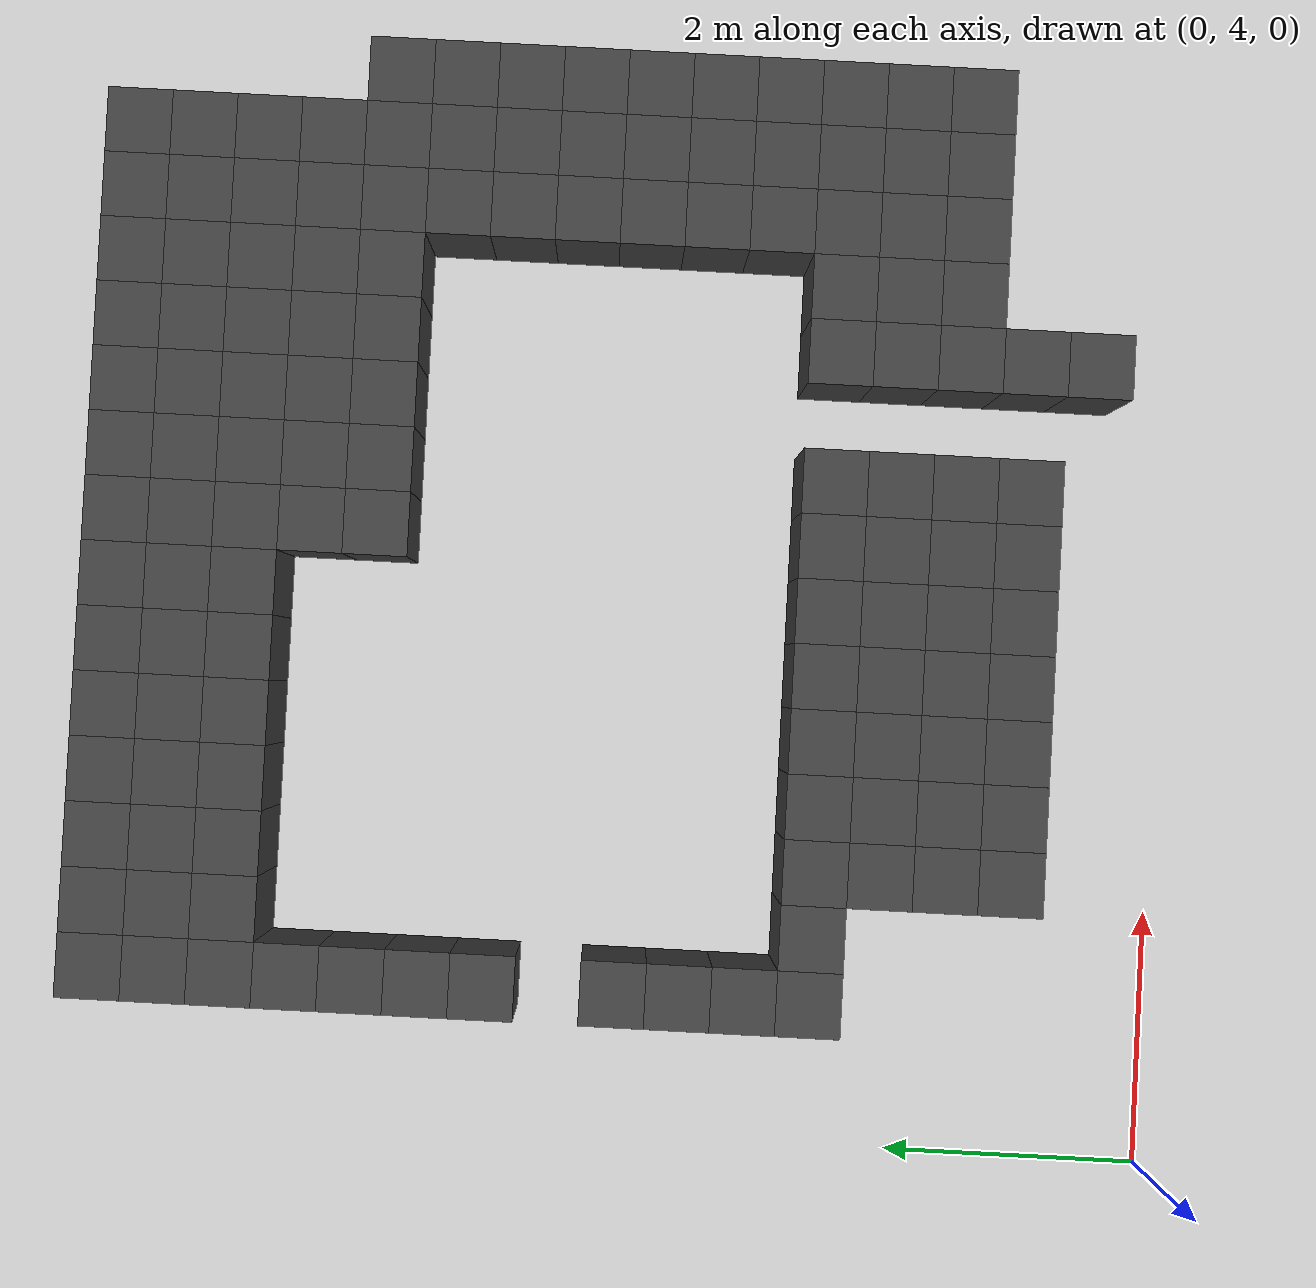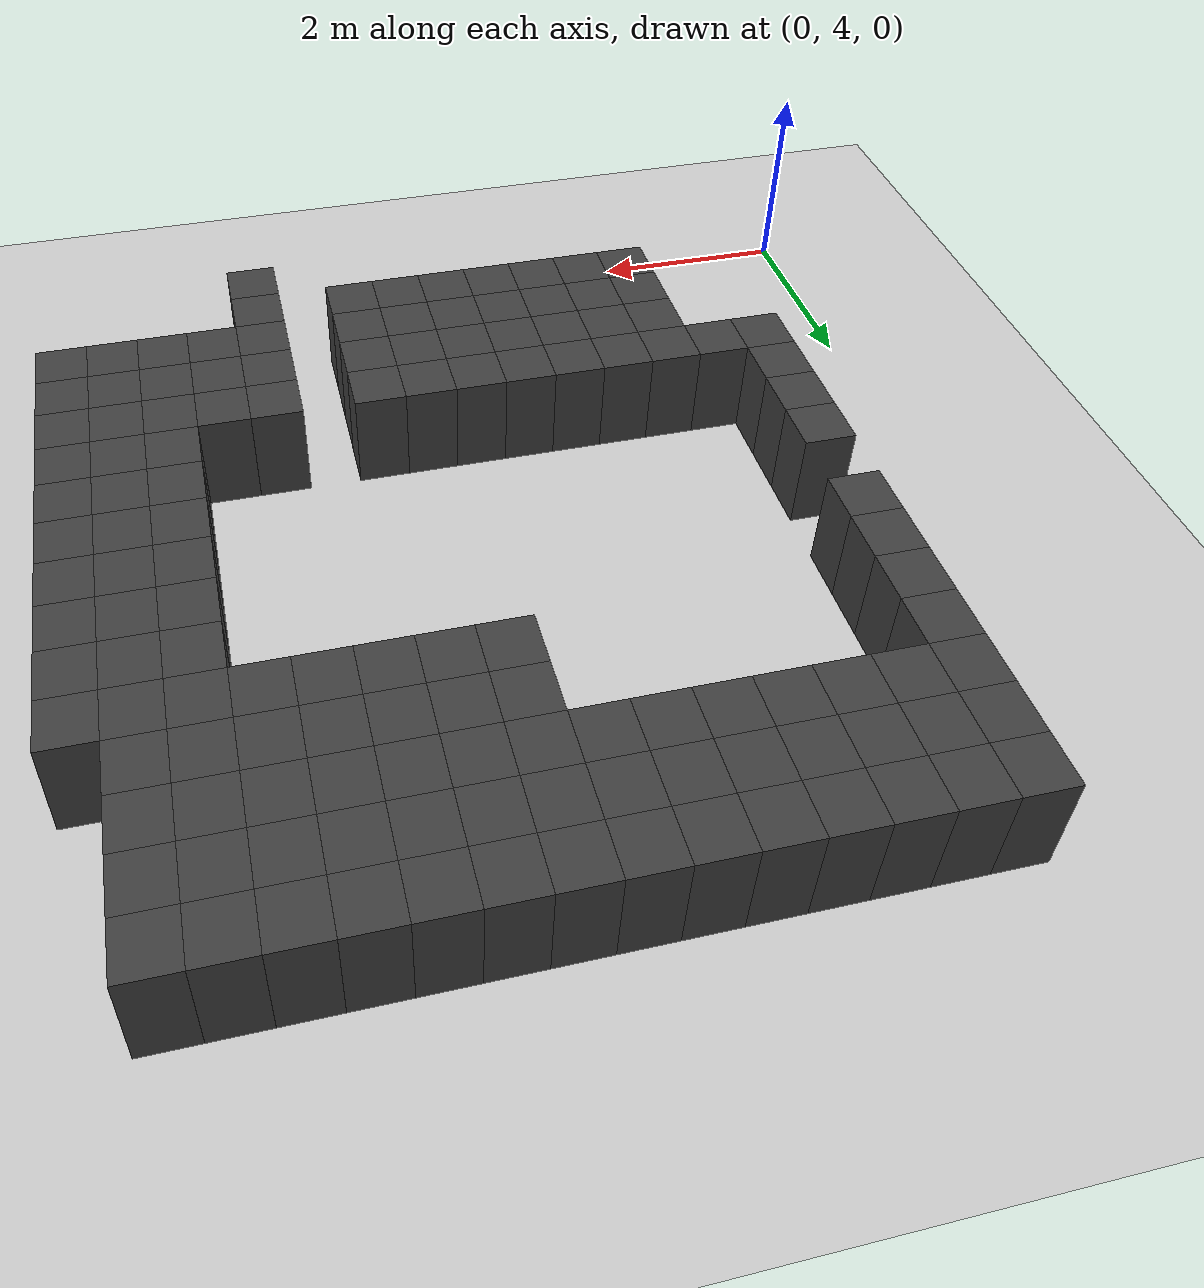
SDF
<sdf version="1.7">
 <world name="map_14980">
  <model name="ground_plane">
   <static>true</static>
   <link name="link">
    <collision name="collision">
     <geometry><plane><normal>0 0 1</normal><size>200 200</size></plane></geometry>
    </collision>
    <visual name="visual">
     <geometry><plane><normal>0 0 1</normal><size>200 200</size></plane></geometry>
     <material><ambient>0.8 0.8 0.8 1</ambient><diffuse>0.8 0.8 0.8 1</diffuse></material>
    </visual>
   </link>
  </model>
  <model name="maze_environment">
   <static>true</static>
   <link name="wall_27">
    <pose>1.250 12.250 0.500 0 0 0</pose>
    <collision name="col"><geometry><box><size>0.5 0.5 1.0</size></box></geometry></collision>
    <visual name="vis">
     <geometry><box><size>0.5 0.5 1.0</size></box></geometry>
     <material><ambient>0.15 0.15 0.15 1</ambient><diffuse>0.25 0.25 0.25 1</diffuse></material>
    </visual>
   </link>
   <link name="wall_28">
    <pose>1.750 12.250 0.500 0 0 0</pose>
    <collision name="col"><geometry><box><size>0.5 0.5 1.0</size></box></geometry></collision>
    <visual name="vis">
     <geometry><box><size>0.5 0.5 1.0</size></box></geometry>
     <material><ambient>0.15 0.15 0.15 1</ambient><diffuse>0.25 0.25 0.25 1</diffuse></material>
    </visual>
   </link>
   <link name="wall_29">
    <pose>2.250 12.250 0.500 0 0 0</pose>
    <collision name="col"><geometry><box><size>0.5 0.5 1.0</size></box></geometry></collision>
    <visual name="vis">
     <geometry><box><size>0.5 0.5 1.0</size></box></geometry>
     <material><ambient>0.15 0.15 0.15 1</ambient><diffuse>0.25 0.25 0.25 1</diffuse></material>
    </visual>
   </link>
   <link name="wall_30">
    <pose>2.750 12.250 0.500 0 0 0</pose>
    <collision name="col"><geometry><box><size>0.5 0.5 1.0</size></box></geometry></collision>
    <visual name="vis">
     <geometry><box><size>0.5 0.5 1.0</size></box></geometry>
     <material><ambient>0.15 0.15 0.15 1</ambient><diffuse>0.25 0.25 0.25 1</diffuse></material>
    </visual>
   </link>
   <link name="wall_31">
    <pose>3.250 12.250 0.500 0 0 0</pose>
    <collision name="col"><geometry><box><size>0.5 0.5 1.0</size></box></geometry></collision>
    <visual name="vis">
     <geometry><box><size>0.5 0.5 1.0</size></box></geometry>
     <material><ambient>0.15 0.15 0.15 1</ambient><diffuse>0.25 0.25 0.25 1</diffuse></material>
    </visual>
   </link>
   <link name="wall_32">
    <pose>3.750 12.250 0.500 0 0 0</pose>
    <collision name="col"><geometry><box><size>0.5 0.5 1.0</size></box></geometry></collision>
    <visual name="vis">
     <geometry><box><size>0.5 0.5 1.0</size></box></geometry>
     <material><ambient>0.15 0.15 0.15 1</ambient><diffuse>0.25 0.25 0.25 1</diffuse></material>
    </visual>
   </link>
   <link name="wall_33">
    <pose>4.250 12.250 0.500 0 0 0</pose>
    <collision name="col"><geometry><box><size>0.5 0.5 1.0</size></box></geometry></collision>
    <visual name="vis">
     <geometry><box><size>0.5 0.5 1.0</size></box></geometry>
     <material><ambient>0.15 0.15 0.15 1</ambient><diffuse>0.25 0.25 0.25 1</diffuse></material>
    </visual>
   </link>
   <link name="wall_34">
    <pose>4.750 12.250 0.500 0 0 0</pose>
    <collision name="col"><geometry><box><size>0.5 0.5 1.0</size></box></geometry></collision>
    <visual name="vis">
     <geometry><box><size>0.5 0.5 1.0</size></box></geometry>
     <material><ambient>0.15 0.15 0.15 1</ambient><diffuse>0.25 0.25 0.25 1</diffuse></material>
    </visual>
   </link>
   <link name="wall_35">
    <pose>5.250 12.250 0.500 0 0 0</pose>
    <collision name="col"><geometry><box><size>0.5 0.5 1.0</size></box></geometry></collision>
    <visual name="vis">
     <geometry><box><size>0.5 0.5 1.0</size></box></geometry>
     <material><ambient>0.15 0.15 0.15 1</ambient><diffuse>0.25 0.25 0.25 1</diffuse></material>
    </visual>
   </link>
   <link name="wall_36">
    <pose>5.750 12.250 0.500 0 0 0</pose>
    <collision name="col"><geometry><box><size>0.5 0.5 1.0</size></box></geometry></collision>
    <visual name="vis">
     <geometry><box><size>0.5 0.5 1.0</size></box></geometry>
     <material><ambient>0.15 0.15 0.15 1</ambient><diffuse>0.25 0.25 0.25 1</diffuse></material>
    </visual>
   </link>
   <link name="wall_37">
    <pose>6.250 12.250 0.500 0 0 0</pose>
    <collision name="col"><geometry><box><size>0.5 0.5 1.0</size></box></geometry></collision>
    <visual name="vis">
     <geometry><box><size>0.5 0.5 1.0</size></box></geometry>
     <material><ambient>0.15 0.15 0.15 1</ambient><diffuse>0.25 0.25 0.25 1</diffuse></material>
    </visual>
   </link>
   <link name="wall_38">
    <pose>6.750 12.250 0.500 0 0 0</pose>
    <collision name="col"><geometry><box><size>0.5 0.5 1.0</size></box></geometry></collision>
    <visual name="vis">
     <geometry><box><size>0.5 0.5 1.0</size></box></geometry>
     <material><ambient>0.15 0.15 0.15 1</ambient><diffuse>0.25 0.25 0.25 1</diffuse></material>
    </visual>
   </link>
   <link name="wall_39">
    <pose>7.250 12.250 0.500 0 0 0</pose>
    <collision name="col"><geometry><box><size>0.5 0.5 1.0</size></box></geometry></collision>
    <visual name="vis">
     <geometry><box><size>0.5 0.5 1.0</size></box></geometry>
     <material><ambient>0.15 0.15 0.15 1</ambient><diffuse>0.25 0.25 0.25 1</diffuse></material>
    </visual>
   </link>
   <link name="wall_40">
    <pose>7.750 12.250 0.500 0 0 0</pose>
    <collision name="col"><geometry><box><size>0.5 0.5 1.0</size></box></geometry></collision>
    <visual name="vis">
     <geometry><box><size>0.5 0.5 1.0</size></box></geometry>
     <material><ambient>0.15 0.15 0.15 1</ambient><diffuse>0.25 0.25 0.25 1</diffuse></material>
    </visual>
   </link>
   <link name="wall_74">
    <pose>1.250 11.750 0.500 0 0 0</pose>
    <collision name="col"><geometry><box><size>0.5 0.5 1.0</size></box></geometry></collision>
    <visual name="vis">
     <geometry><box><size>0.5 0.5 1.0</size></box></geometry>
     <material><ambient>0.15 0.15 0.15 1</ambient><diffuse>0.25 0.25 0.25 1</diffuse></material>
    </visual>
   </link>
   <link name="wall_75">
    <pose>1.750 11.750 0.500 0 0 0</pose>
    <collision name="col"><geometry><box><size>0.5 0.5 1.0</size></box></geometry></collision>
    <visual name="vis">
     <geometry><box><size>0.5 0.5 1.0</size></box></geometry>
     <material><ambient>0.15 0.15 0.15 1</ambient><diffuse>0.25 0.25 0.25 1</diffuse></material>
    </visual>
   </link>
   <link name="wall_76">
    <pose>2.250 11.750 0.500 0 0 0</pose>
    <collision name="col"><geometry><box><size>0.5 0.5 1.0</size></box></geometry></collision>
    <visual name="vis">
     <geometry><box><size>0.5 0.5 1.0</size></box></geometry>
     <material><ambient>0.15 0.15 0.15 1</ambient><diffuse>0.25 0.25 0.25 1</diffuse></material>
    </visual>
   </link>
   <link name="wall_77">
    <pose>2.750 11.750 0.500 0 0 0</pose>
    <collision name="col"><geometry><box><size>0.5 0.5 1.0</size></box></geometry></collision>
    <visual name="vis">
     <geometry><box><size>0.5 0.5 1.0</size></box></geometry>
     <material><ambient>0.15 0.15 0.15 1</ambient><diffuse>0.25 0.25 0.25 1</diffuse></material>
    </visual>
   </link>
   <link name="wall_78">
    <pose>3.250 11.750 0.500 0 0 0</pose>
    <collision name="col"><geometry><box><size>0.5 0.5 1.0</size></box></geometry></collision>
    <visual name="vis">
     <geometry><box><size>0.5 0.5 1.0</size></box></geometry>
     <material><ambient>0.15 0.15 0.15 1</ambient><diffuse>0.25 0.25 0.25 1</diffuse></material>
    </visual>
   </link>
   <link name="wall_79">
    <pose>3.750 11.750 0.500 0 0 0</pose>
    <collision name="col"><geometry><box><size>0.5 0.5 1.0</size></box></geometry></collision>
    <visual name="vis">
     <geometry><box><size>0.5 0.5 1.0</size></box></geometry>
     <material><ambient>0.15 0.15 0.15 1</ambient><diffuse>0.25 0.25 0.25 1</diffuse></material>
    </visual>
   </link>
   <link name="wall_80">
    <pose>4.250 11.750 0.500 0 0 0</pose>
    <collision name="col"><geometry><box><size>0.5 0.5 1.0</size></box></geometry></collision>
    <visual name="vis">
     <geometry><box><size>0.5 0.5 1.0</size></box></geometry>
     <material><ambient>0.15 0.15 0.15 1</ambient><diffuse>0.25 0.25 0.25 1</diffuse></material>
    </visual>
   </link>
   <link name="wall_81">
    <pose>4.750 11.750 0.500 0 0 0</pose>
    <collision name="col"><geometry><box><size>0.5 0.5 1.0</size></box></geometry></collision>
    <visual name="vis">
     <geometry><box><size>0.5 0.5 1.0</size></box></geometry>
     <material><ambient>0.15 0.15 0.15 1</ambient><diffuse>0.25 0.25 0.25 1</diffuse></material>
    </visual>
   </link>
   <link name="wall_82">
    <pose>5.250 11.750 0.500 0 0 0</pose>
    <collision name="col"><geometry><box><size>0.5 0.5 1.0</size></box></geometry></collision>
    <visual name="vis">
     <geometry><box><size>0.5 0.5 1.0</size></box></geometry>
     <material><ambient>0.15 0.15 0.15 1</ambient><diffuse>0.25 0.25 0.25 1</diffuse></material>
    </visual>
   </link>
   <link name="wall_83">
    <pose>5.750 11.750 0.500 0 0 0</pose>
    <collision name="col"><geometry><box><size>0.5 0.5 1.0</size></box></geometry></collision>
    <visual name="vis">
     <geometry><box><size>0.5 0.5 1.0</size></box></geometry>
     <material><ambient>0.15 0.15 0.15 1</ambient><diffuse>0.25 0.25 0.25 1</diffuse></material>
    </visual>
   </link>
   <link name="wall_84">
    <pose>6.250 11.750 0.500 0 0 0</pose>
    <collision name="col"><geometry><box><size>0.5 0.5 1.0</size></box></geometry></collision>
    <visual name="vis">
     <geometry><box><size>0.5 0.5 1.0</size></box></geometry>
     <material><ambient>0.15 0.15 0.15 1</ambient><diffuse>0.25 0.25 0.25 1</diffuse></material>
    </visual>
   </link>
   <link name="wall_85">
    <pose>6.750 11.750 0.500 0 0 0</pose>
    <collision name="col"><geometry><box><size>0.5 0.5 1.0</size></box></geometry></collision>
    <visual name="vis">
     <geometry><box><size>0.5 0.5 1.0</size></box></geometry>
     <material><ambient>0.15 0.15 0.15 1</ambient><diffuse>0.25 0.25 0.25 1</diffuse></material>
    </visual>
   </link>
   <link name="wall_86">
    <pose>7.250 11.750 0.500 0 0 0</pose>
    <collision name="col"><geometry><box><size>0.5 0.5 1.0</size></box></geometry></collision>
    <visual name="vis">
     <geometry><box><size>0.5 0.5 1.0</size></box></geometry>
     <material><ambient>0.15 0.15 0.15 1</ambient><diffuse>0.25 0.25 0.25 1</diffuse></material>
    </visual>
   </link>
   <link name="wall_87">
    <pose>7.750 11.750 0.500 0 0 0</pose>
    <collision name="col"><geometry><box><size>0.5 0.5 1.0</size></box></geometry></collision>
    <visual name="vis">
     <geometry><box><size>0.5 0.5 1.0</size></box></geometry>
     <material><ambient>0.15 0.15 0.15 1</ambient><diffuse>0.25 0.25 0.25 1</diffuse></material>
    </visual>
   </link>
   <link name="wall_121">
    <pose>1.250 11.250 0.500 0 0 0</pose>
    <collision name="col"><geometry><box><size>0.5 0.5 1.0</size></box></geometry></collision>
    <visual name="vis">
     <geometry><box><size>0.5 0.5 1.0</size></box></geometry>
     <material><ambient>0.15 0.15 0.15 1</ambient><diffuse>0.25 0.25 0.25 1</diffuse></material>
    </visual>
   </link>
   <link name="wall_122">
    <pose>1.750 11.250 0.500 0 0 0</pose>
    <collision name="col"><geometry><box><size>0.5 0.5 1.0</size></box></geometry></collision>
    <visual name="vis">
     <geometry><box><size>0.5 0.5 1.0</size></box></geometry>
     <material><ambient>0.15 0.15 0.15 1</ambient><diffuse>0.25 0.25 0.25 1</diffuse></material>
    </visual>
   </link>
   <link name="wall_123">
    <pose>2.250 11.250 0.500 0 0 0</pose>
    <collision name="col"><geometry><box><size>0.5 0.5 1.0</size></box></geometry></collision>
    <visual name="vis">
     <geometry><box><size>0.5 0.5 1.0</size></box></geometry>
     <material><ambient>0.15 0.15 0.15 1</ambient><diffuse>0.25 0.25 0.25 1</diffuse></material>
    </visual>
   </link>
   <link name="wall_124">
    <pose>2.750 11.250 0.500 0 0 0</pose>
    <collision name="col"><geometry><box><size>0.5 0.5 1.0</size></box></geometry></collision>
    <visual name="vis">
     <geometry><box><size>0.5 0.5 1.0</size></box></geometry>
     <material><ambient>0.15 0.15 0.15 1</ambient><diffuse>0.25 0.25 0.25 1</diffuse></material>
    </visual>
   </link>
   <link name="wall_125">
    <pose>3.250 11.250 0.500 0 0 0</pose>
    <collision name="col"><geometry><box><size>0.5 0.5 1.0</size></box></geometry></collision>
    <visual name="vis">
     <geometry><box><size>0.5 0.5 1.0</size></box></geometry>
     <material><ambient>0.15 0.15 0.15 1</ambient><diffuse>0.25 0.25 0.25 1</diffuse></material>
    </visual>
   </link>
   <link name="wall_126">
    <pose>3.750 11.250 0.500 0 0 0</pose>
    <collision name="col"><geometry><box><size>0.5 0.5 1.0</size></box></geometry></collision>
    <visual name="vis">
     <geometry><box><size>0.5 0.5 1.0</size></box></geometry>
     <material><ambient>0.15 0.15 0.15 1</ambient><diffuse>0.25 0.25 0.25 1</diffuse></material>
    </visual>
   </link>
   <link name="wall_127">
    <pose>4.250 11.250 0.500 0 0 0</pose>
    <collision name="col"><geometry><box><size>0.5 0.5 1.0</size></box></geometry></collision>
    <visual name="vis">
     <geometry><box><size>0.5 0.5 1.0</size></box></geometry>
     <material><ambient>0.15 0.15 0.15 1</ambient><diffuse>0.25 0.25 0.25 1</diffuse></material>
    </visual>
   </link>
   <link name="wall_128">
    <pose>4.750 11.250 0.500 0 0 0</pose>
    <collision name="col"><geometry><box><size>0.5 0.5 1.0</size></box></geometry></collision>
    <visual name="vis">
     <geometry><box><size>0.5 0.5 1.0</size></box></geometry>
     <material><ambient>0.15 0.15 0.15 1</ambient><diffuse>0.25 0.25 0.25 1</diffuse></material>
    </visual>
   </link>
   <link name="wall_129">
    <pose>5.250 11.250 0.500 0 0 0</pose>
    <collision name="col"><geometry><box><size>0.5 0.5 1.0</size></box></geometry></collision>
    <visual name="vis">
     <geometry><box><size>0.5 0.5 1.0</size></box></geometry>
     <material><ambient>0.15 0.15 0.15 1</ambient><diffuse>0.25 0.25 0.25 1</diffuse></material>
    </visual>
   </link>
   <link name="wall_130">
    <pose>5.750 11.250 0.500 0 0 0</pose>
    <collision name="col"><geometry><box><size>0.5 0.5 1.0</size></box></geometry></collision>
    <visual name="vis">
     <geometry><box><size>0.5 0.5 1.0</size></box></geometry>
     <material><ambient>0.15 0.15 0.15 1</ambient><diffuse>0.25 0.25 0.25 1</diffuse></material>
    </visual>
   </link>
   <link name="wall_131">
    <pose>6.250 11.250 0.500 0 0 0</pose>
    <collision name="col"><geometry><box><size>0.5 0.5 1.0</size></box></geometry></collision>
    <visual name="vis">
     <geometry><box><size>0.5 0.5 1.0</size></box></geometry>
     <material><ambient>0.15 0.15 0.15 1</ambient><diffuse>0.25 0.25 0.25 1</diffuse></material>
    </visual>
   </link>
   <link name="wall_132">
    <pose>6.750 11.250 0.500 0 0 0</pose>
    <collision name="col"><geometry><box><size>0.5 0.5 1.0</size></box></geometry></collision>
    <visual name="vis">
     <geometry><box><size>0.5 0.5 1.0</size></box></geometry>
     <material><ambient>0.15 0.15 0.15 1</ambient><diffuse>0.25 0.25 0.25 1</diffuse></material>
    </visual>
   </link>
   <link name="wall_133">
    <pose>7.250 11.250 0.500 0 0 0</pose>
    <collision name="col"><geometry><box><size>0.5 0.5 1.0</size></box></geometry></collision>
    <visual name="vis">
     <geometry><box><size>0.5 0.5 1.0</size></box></geometry>
     <material><ambient>0.15 0.15 0.15 1</ambient><diffuse>0.25 0.25 0.25 1</diffuse></material>
    </visual>
   </link>
   <link name="wall_134">
    <pose>7.750 11.250 0.500 0 0 0</pose>
    <collision name="col"><geometry><box><size>0.5 0.5 1.0</size></box></geometry></collision>
    <visual name="vis">
     <geometry><box><size>0.5 0.5 1.0</size></box></geometry>
     <material><ambient>0.15 0.15 0.15 1</ambient><diffuse>0.25 0.25 0.25 1</diffuse></material>
    </visual>
   </link>
   <link name="wall_168">
    <pose>1.250 10.750 0.500 0 0 0</pose>
    <collision name="col"><geometry><box><size>0.5 0.5 1.0</size></box></geometry></collision>
    <visual name="vis">
     <geometry><box><size>0.5 0.5 1.0</size></box></geometry>
     <material><ambient>0.15 0.15 0.15 1</ambient><diffuse>0.25 0.25 0.25 1</diffuse></material>
    </visual>
   </link>
   <link name="wall_169">
    <pose>4.750 10.750 0.500 0 0 0</pose>
    <collision name="col"><geometry><box><size>0.5 0.5 1.0</size></box></geometry></collision>
    <visual name="vis">
     <geometry><box><size>0.5 0.5 1.0</size></box></geometry>
     <material><ambient>0.15 0.15 0.15 1</ambient><diffuse>0.25 0.25 0.25 1</diffuse></material>
    </visual>
   </link>
   <link name="wall_170">
    <pose>5.250 10.750 0.500 0 0 0</pose>
    <collision name="col"><geometry><box><size>0.5 0.5 1.0</size></box></geometry></collision>
    <visual name="vis">
     <geometry><box><size>0.5 0.5 1.0</size></box></geometry>
     <material><ambient>0.15 0.15 0.15 1</ambient><diffuse>0.25 0.25 0.25 1</diffuse></material>
    </visual>
   </link>
   <link name="wall_171">
    <pose>5.750 10.750 0.500 0 0 0</pose>
    <collision name="col"><geometry><box><size>0.5 0.5 1.0</size></box></geometry></collision>
    <visual name="vis">
     <geometry><box><size>0.5 0.5 1.0</size></box></geometry>
     <material><ambient>0.15 0.15 0.15 1</ambient><diffuse>0.25 0.25 0.25 1</diffuse></material>
    </visual>
   </link>
   <link name="wall_172">
    <pose>6.250 10.750 0.500 0 0 0</pose>
    <collision name="col"><geometry><box><size>0.5 0.5 1.0</size></box></geometry></collision>
    <visual name="vis">
     <geometry><box><size>0.5 0.5 1.0</size></box></geometry>
     <material><ambient>0.15 0.15 0.15 1</ambient><diffuse>0.25 0.25 0.25 1</diffuse></material>
    </visual>
   </link>
   <link name="wall_173">
    <pose>6.750 10.750 0.500 0 0 0</pose>
    <collision name="col"><geometry><box><size>0.5 0.5 1.0</size></box></geometry></collision>
    <visual name="vis">
     <geometry><box><size>0.5 0.5 1.0</size></box></geometry>
     <material><ambient>0.15 0.15 0.15 1</ambient><diffuse>0.25 0.25 0.25 1</diffuse></material>
    </visual>
   </link>
   <link name="wall_174">
    <pose>7.250 10.750 0.500 0 0 0</pose>
    <collision name="col"><geometry><box><size>0.5 0.5 1.0</size></box></geometry></collision>
    <visual name="vis">
     <geometry><box><size>0.5 0.5 1.0</size></box></geometry>
     <material><ambient>0.15 0.15 0.15 1</ambient><diffuse>0.25 0.25 0.25 1</diffuse></material>
    </visual>
   </link>
   <link name="wall_175">
    <pose>7.750 10.750 0.500 0 0 0</pose>
    <collision name="col"><geometry><box><size>0.5 0.5 1.0</size></box></geometry></collision>
    <visual name="vis">
     <geometry><box><size>0.5 0.5 1.0</size></box></geometry>
     <material><ambient>0.15 0.15 0.15 1</ambient><diffuse>0.25 0.25 0.25 1</diffuse></material>
    </visual>
   </link>
   <link name="wall_211">
    <pose>1.250 10.250 0.500 0 0 0</pose>
    <collision name="col"><geometry><box><size>0.5 0.5 1.0</size></box></geometry></collision>
    <visual name="vis">
     <geometry><box><size>0.5 0.5 1.0</size></box></geometry>
     <material><ambient>0.15 0.15 0.15 1</ambient><diffuse>0.25 0.25 0.25 1</diffuse></material>
    </visual>
   </link>
   <link name="wall_212">
    <pose>4.750 10.250 0.500 0 0 0</pose>
    <collision name="col"><geometry><box><size>0.5 0.5 1.0</size></box></geometry></collision>
    <visual name="vis">
     <geometry><box><size>0.5 0.5 1.0</size></box></geometry>
     <material><ambient>0.15 0.15 0.15 1</ambient><diffuse>0.25 0.25 0.25 1</diffuse></material>
    </visual>
   </link>
   <link name="wall_213">
    <pose>5.250 10.250 0.500 0 0 0</pose>
    <collision name="col"><geometry><box><size>0.5 0.5 1.0</size></box></geometry></collision>
    <visual name="vis">
     <geometry><box><size>0.5 0.5 1.0</size></box></geometry>
     <material><ambient>0.15 0.15 0.15 1</ambient><diffuse>0.25 0.25 0.25 1</diffuse></material>
    </visual>
   </link>
   <link name="wall_214">
    <pose>5.750 10.250 0.500 0 0 0</pose>
    <collision name="col"><geometry><box><size>0.5 0.5 1.0</size></box></geometry></collision>
    <visual name="vis">
     <geometry><box><size>0.5 0.5 1.0</size></box></geometry>
     <material><ambient>0.15 0.15 0.15 1</ambient><diffuse>0.25 0.25 0.25 1</diffuse></material>
    </visual>
   </link>
   <link name="wall_215">
    <pose>6.250 10.250 0.500 0 0 0</pose>
    <collision name="col"><geometry><box><size>0.5 0.5 1.0</size></box></geometry></collision>
    <visual name="vis">
     <geometry><box><size>0.5 0.5 1.0</size></box></geometry>
     <material><ambient>0.15 0.15 0.15 1</ambient><diffuse>0.25 0.25 0.25 1</diffuse></material>
    </visual>
   </link>
   <link name="wall_216">
    <pose>6.750 10.250 0.500 0 0 0</pose>
    <collision name="col"><geometry><box><size>0.5 0.5 1.0</size></box></geometry></collision>
    <visual name="vis">
     <geometry><box><size>0.5 0.5 1.0</size></box></geometry>
     <material><ambient>0.15 0.15 0.15 1</ambient><diffuse>0.25 0.25 0.25 1</diffuse></material>
    </visual>
   </link>
   <link name="wall_217">
    <pose>7.250 10.250 0.500 0 0 0</pose>
    <collision name="col"><geometry><box><size>0.5 0.5 1.0</size></box></geometry></collision>
    <visual name="vis">
     <geometry><box><size>0.5 0.5 1.0</size></box></geometry>
     <material><ambient>0.15 0.15 0.15 1</ambient><diffuse>0.25 0.25 0.25 1</diffuse></material>
    </visual>
   </link>
   <link name="wall_218">
    <pose>7.750 10.250 0.500 0 0 0</pose>
    <collision name="col"><geometry><box><size>0.5 0.5 1.0</size></box></geometry></collision>
    <visual name="vis">
     <geometry><box><size>0.5 0.5 1.0</size></box></geometry>
     <material><ambient>0.15 0.15 0.15 1</ambient><diffuse>0.25 0.25 0.25 1</diffuse></material>
    </visual>
   </link>
   <link name="wall_219">
    <pose>8.250 10.250 0.500 0 0 0</pose>
    <collision name="col"><geometry><box><size>0.5 0.5 1.0</size></box></geometry></collision>
    <visual name="vis">
     <geometry><box><size>0.5 0.5 1.0</size></box></geometry>
     <material><ambient>0.15 0.15 0.15 1</ambient><diffuse>0.25 0.25 0.25 1</diffuse></material>
    </visual>
   </link>
   <link name="wall_254">
    <pose>1.250 9.750 0.500 0 0 0</pose>
    <collision name="col"><geometry><box><size>0.5 0.5 1.0</size></box></geometry></collision>
    <visual name="vis">
     <geometry><box><size>0.5 0.5 1.0</size></box></geometry>
     <material><ambient>0.15 0.15 0.15 1</ambient><diffuse>0.25 0.25 0.25 1</diffuse></material>
    </visual>
   </link>
   <link name="wall_255">
    <pose>7.250 9.750 0.500 0 0 0</pose>
    <collision name="col"><geometry><box><size>0.5 0.5 1.0</size></box></geometry></collision>
    <visual name="vis">
     <geometry><box><size>0.5 0.5 1.0</size></box></geometry>
     <material><ambient>0.15 0.15 0.15 1</ambient><diffuse>0.25 0.25 0.25 1</diffuse></material>
    </visual>
   </link>
   <link name="wall_256">
    <pose>7.750 9.750 0.500 0 0 0</pose>
    <collision name="col"><geometry><box><size>0.5 0.5 1.0</size></box></geometry></collision>
    <visual name="vis">
     <geometry><box><size>0.5 0.5 1.0</size></box></geometry>
     <material><ambient>0.15 0.15 0.15 1</ambient><diffuse>0.25 0.25 0.25 1</diffuse></material>
    </visual>
   </link>
   <link name="wall_257">
    <pose>8.250 9.750 0.500 0 0 0</pose>
    <collision name="col"><geometry><box><size>0.5 0.5 1.0</size></box></geometry></collision>
    <visual name="vis">
     <geometry><box><size>0.5 0.5 1.0</size></box></geometry>
     <material><ambient>0.15 0.15 0.15 1</ambient><diffuse>0.25 0.25 0.25 1</diffuse></material>
    </visual>
   </link>
   <link name="wall_292">
    <pose>1.250 9.250 0.500 0 0 0</pose>
    <collision name="col"><geometry><box><size>0.5 0.5 1.0</size></box></geometry></collision>
    <visual name="vis">
     <geometry><box><size>0.5 0.5 1.0</size></box></geometry>
     <material><ambient>0.15 0.15 0.15 1</ambient><diffuse>0.25 0.25 0.25 1</diffuse></material>
    </visual>
   </link>
   <link name="wall_293">
    <pose>7.250 9.250 0.500 0 0 0</pose>
    <collision name="col"><geometry><box><size>0.5 0.5 1.0</size></box></geometry></collision>
    <visual name="vis">
     <geometry><box><size>0.5 0.5 1.0</size></box></geometry>
     <material><ambient>0.15 0.15 0.15 1</ambient><diffuse>0.25 0.25 0.25 1</diffuse></material>
    </visual>
   </link>
   <link name="wall_294">
    <pose>7.750 9.250 0.500 0 0 0</pose>
    <collision name="col"><geometry><box><size>0.5 0.5 1.0</size></box></geometry></collision>
    <visual name="vis">
     <geometry><box><size>0.5 0.5 1.0</size></box></geometry>
     <material><ambient>0.15 0.15 0.15 1</ambient><diffuse>0.25 0.25 0.25 1</diffuse></material>
    </visual>
   </link>
   <link name="wall_295">
    <pose>8.250 9.250 0.500 0 0 0</pose>
    <collision name="col"><geometry><box><size>0.5 0.5 1.0</size></box></geometry></collision>
    <visual name="vis">
     <geometry><box><size>0.5 0.5 1.0</size></box></geometry>
     <material><ambient>0.15 0.15 0.15 1</ambient><diffuse>0.25 0.25 0.25 1</diffuse></material>
    </visual>
   </link>
   <link name="wall_328">
    <pose>7.250 8.750 0.500 0 0 0</pose>
    <collision name="col"><geometry><box><size>0.5 0.5 1.0</size></box></geometry></collision>
    <visual name="vis">
     <geometry><box><size>0.5 0.5 1.0</size></box></geometry>
     <material><ambient>0.15 0.15 0.15 1</ambient><diffuse>0.25 0.25 0.25 1</diffuse></material>
    </visual>
   </link>
   <link name="wall_329">
    <pose>7.750 8.750 0.500 0 0 0</pose>
    <collision name="col"><geometry><box><size>0.5 0.5 1.0</size></box></geometry></collision>
    <visual name="vis">
     <geometry><box><size>0.5 0.5 1.0</size></box></geometry>
     <material><ambient>0.15 0.15 0.15 1</ambient><diffuse>0.25 0.25 0.25 1</diffuse></material>
    </visual>
   </link>
   <link name="wall_330">
    <pose>8.250 8.750 0.500 0 0 0</pose>
    <collision name="col"><geometry><box><size>0.5 0.5 1.0</size></box></geometry></collision>
    <visual name="vis">
     <geometry><box><size>0.5 0.5 1.0</size></box></geometry>
     <material><ambient>0.15 0.15 0.15 1</ambient><diffuse>0.25 0.25 0.25 1</diffuse></material>
    </visual>
   </link>
   <link name="wall_356">
    <pose>1.250 8.250 0.500 0 0 0</pose>
    <collision name="col"><geometry><box><size>0.5 0.5 1.0</size></box></geometry></collision>
    <visual name="vis">
     <geometry><box><size>0.5 0.5 1.0</size></box></geometry>
     <material><ambient>0.15 0.15 0.15 1</ambient><diffuse>0.25 0.25 0.25 1</diffuse></material>
    </visual>
   </link>
   <link name="wall_357">
    <pose>7.250 8.250 0.500 0 0 0</pose>
    <collision name="col"><geometry><box><size>0.5 0.5 1.0</size></box></geometry></collision>
    <visual name="vis">
     <geometry><box><size>0.5 0.5 1.0</size></box></geometry>
     <material><ambient>0.15 0.15 0.15 1</ambient><diffuse>0.25 0.25 0.25 1</diffuse></material>
    </visual>
   </link>
   <link name="wall_358">
    <pose>7.750 8.250 0.500 0 0 0</pose>
    <collision name="col"><geometry><box><size>0.5 0.5 1.0</size></box></geometry></collision>
    <visual name="vis">
     <geometry><box><size>0.5 0.5 1.0</size></box></geometry>
     <material><ambient>0.15 0.15 0.15 1</ambient><diffuse>0.25 0.25 0.25 1</diffuse></material>
    </visual>
   </link>
   <link name="wall_359">
    <pose>8.250 8.250 0.500 0 0 0</pose>
    <collision name="col"><geometry><box><size>0.5 0.5 1.0</size></box></geometry></collision>
    <visual name="vis">
     <geometry><box><size>0.5 0.5 1.0</size></box></geometry>
     <material><ambient>0.15 0.15 0.15 1</ambient><diffuse>0.25 0.25 0.25 1</diffuse></material>
    </visual>
   </link>
   <link name="wall_385">
    <pose>1.250 7.750 0.500 0 0 0</pose>
    <collision name="col"><geometry><box><size>0.5 0.5 1.0</size></box></geometry></collision>
    <visual name="vis">
     <geometry><box><size>0.5 0.5 1.0</size></box></geometry>
     <material><ambient>0.15 0.15 0.15 1</ambient><diffuse>0.25 0.25 0.25 1</diffuse></material>
    </visual>
   </link>
   <link name="wall_386">
    <pose>7.250 7.750 0.500 0 0 0</pose>
    <collision name="col"><geometry><box><size>0.5 0.5 1.0</size></box></geometry></collision>
    <visual name="vis">
     <geometry><box><size>0.5 0.5 1.0</size></box></geometry>
     <material><ambient>0.15 0.15 0.15 1</ambient><diffuse>0.25 0.25 0.25 1</diffuse></material>
    </visual>
   </link>
   <link name="wall_387">
    <pose>7.750 7.750 0.500 0 0 0</pose>
    <collision name="col"><geometry><box><size>0.5 0.5 1.0</size></box></geometry></collision>
    <visual name="vis">
     <geometry><box><size>0.5 0.5 1.0</size></box></geometry>
     <material><ambient>0.15 0.15 0.15 1</ambient><diffuse>0.25 0.25 0.25 1</diffuse></material>
    </visual>
   </link>
   <link name="wall_388">
    <pose>8.250 7.750 0.500 0 0 0</pose>
    <collision name="col"><geometry><box><size>0.5 0.5 1.0</size></box></geometry></collision>
    <visual name="vis">
     <geometry><box><size>0.5 0.5 1.0</size></box></geometry>
     <material><ambient>0.15 0.15 0.15 1</ambient><diffuse>0.25 0.25 0.25 1</diffuse></material>
    </visual>
   </link>
   <link name="wall_408">
    <pose>1.250 7.250 0.500 0 0 0</pose>
    <collision name="col"><geometry><box><size>0.5 0.5 1.0</size></box></geometry></collision>
    <visual name="vis">
     <geometry><box><size>0.5 0.5 1.0</size></box></geometry>
     <material><ambient>0.15 0.15 0.15 1</ambient><diffuse>0.25 0.25 0.25 1</diffuse></material>
    </visual>
   </link>
   <link name="wall_409">
    <pose>7.250 7.250 0.500 0 0 0</pose>
    <collision name="col"><geometry><box><size>0.5 0.5 1.0</size></box></geometry></collision>
    <visual name="vis">
     <geometry><box><size>0.5 0.5 1.0</size></box></geometry>
     <material><ambient>0.15 0.15 0.15 1</ambient><diffuse>0.25 0.25 0.25 1</diffuse></material>
    </visual>
   </link>
   <link name="wall_410">
    <pose>7.750 7.250 0.500 0 0 0</pose>
    <collision name="col"><geometry><box><size>0.5 0.5 1.0</size></box></geometry></collision>
    <visual name="vis">
     <geometry><box><size>0.5 0.5 1.0</size></box></geometry>
     <material><ambient>0.15 0.15 0.15 1</ambient><diffuse>0.25 0.25 0.25 1</diffuse></material>
    </visual>
   </link>
   <link name="wall_411">
    <pose>8.250 7.250 0.500 0 0 0</pose>
    <collision name="col"><geometry><box><size>0.5 0.5 1.0</size></box></geometry></collision>
    <visual name="vis">
     <geometry><box><size>0.5 0.5 1.0</size></box></geometry>
     <material><ambient>0.15 0.15 0.15 1</ambient><diffuse>0.25 0.25 0.25 1</diffuse></material>
    </visual>
   </link>
   <link name="wall_438">
    <pose>1.250 6.750 0.500 0 0 0</pose>
    <collision name="col"><geometry><box><size>0.5 0.5 1.0</size></box></geometry></collision>
    <visual name="vis">
     <geometry><box><size>0.5 0.5 1.0</size></box></geometry>
     <material><ambient>0.15 0.15 0.15 1</ambient><diffuse>0.25 0.25 0.25 1</diffuse></material>
    </visual>
   </link>
   <link name="wall_439">
    <pose>1.750 6.750 0.500 0 0 0</pose>
    <collision name="col"><geometry><box><size>0.5 0.5 1.0</size></box></geometry></collision>
    <visual name="vis">
     <geometry><box><size>0.5 0.5 1.0</size></box></geometry>
     <material><ambient>0.15 0.15 0.15 1</ambient><diffuse>0.25 0.25 0.25 1</diffuse></material>
    </visual>
   </link>
   <link name="wall_440">
    <pose>2.250 6.750 0.500 0 0 0</pose>
    <collision name="col"><geometry><box><size>0.5 0.5 1.0</size></box></geometry></collision>
    <visual name="vis">
     <geometry><box><size>0.5 0.5 1.0</size></box></geometry>
     <material><ambient>0.15 0.15 0.15 1</ambient><diffuse>0.25 0.25 0.25 1</diffuse></material>
    </visual>
   </link>
   <link name="wall_441">
    <pose>2.750 6.750 0.500 0 0 0</pose>
    <collision name="col"><geometry><box><size>0.5 0.5 1.0</size></box></geometry></collision>
    <visual name="vis">
     <geometry><box><size>0.5 0.5 1.0</size></box></geometry>
     <material><ambient>0.15 0.15 0.15 1</ambient><diffuse>0.25 0.25 0.25 1</diffuse></material>
    </visual>
   </link>
   <link name="wall_442">
    <pose>3.250 6.750 0.500 0 0 0</pose>
    <collision name="col"><geometry><box><size>0.5 0.5 1.0</size></box></geometry></collision>
    <visual name="vis">
     <geometry><box><size>0.5 0.5 1.0</size></box></geometry>
     <material><ambient>0.15 0.15 0.15 1</ambient><diffuse>0.25 0.25 0.25 1</diffuse></material>
    </visual>
   </link>
   <link name="wall_443">
    <pose>3.750 6.750 0.500 0 0 0</pose>
    <collision name="col"><geometry><box><size>0.5 0.5 1.0</size></box></geometry></collision>
    <visual name="vis">
     <geometry><box><size>0.5 0.5 1.0</size></box></geometry>
     <material><ambient>0.15 0.15 0.15 1</ambient><diffuse>0.25 0.25 0.25 1</diffuse></material>
    </visual>
   </link>
   <link name="wall_444">
    <pose>4.250 6.750 0.500 0 0 0</pose>
    <collision name="col"><geometry><box><size>0.5 0.5 1.0</size></box></geometry></collision>
    <visual name="vis">
     <geometry><box><size>0.5 0.5 1.0</size></box></geometry>
     <material><ambient>0.15 0.15 0.15 1</ambient><diffuse>0.25 0.25 0.25 1</diffuse></material>
    </visual>
   </link>
   <link name="wall_445">
    <pose>4.750 6.750 0.500 0 0 0</pose>
    <collision name="col"><geometry><box><size>0.5 0.5 1.0</size></box></geometry></collision>
    <visual name="vis">
     <geometry><box><size>0.5 0.5 1.0</size></box></geometry>
     <material><ambient>0.15 0.15 0.15 1</ambient><diffuse>0.25 0.25 0.25 1</diffuse></material>
    </visual>
   </link>
   <link name="wall_446">
    <pose>5.250 6.750 0.500 0 0 0</pose>
    <collision name="col"><geometry><box><size>0.5 0.5 1.0</size></box></geometry></collision>
    <visual name="vis">
     <geometry><box><size>0.5 0.5 1.0</size></box></geometry>
     <material><ambient>0.15 0.15 0.15 1</ambient><diffuse>0.25 0.25 0.25 1</diffuse></material>
    </visual>
   </link>
   <link name="wall_447">
    <pose>6.250 6.750 0.500 0 0 0</pose>
    <collision name="col"><geometry><box><size>0.5 0.5 1.0</size></box></geometry></collision>
    <visual name="vis">
     <geometry><box><size>0.5 0.5 1.0</size></box></geometry>
     <material><ambient>0.15 0.15 0.15 1</ambient><diffuse>0.25 0.25 0.25 1</diffuse></material>
    </visual>
   </link>
   <link name="wall_448">
    <pose>6.750 6.750 0.500 0 0 0</pose>
    <collision name="col"><geometry><box><size>0.5 0.5 1.0</size></box></geometry></collision>
    <visual name="vis">
     <geometry><box><size>0.5 0.5 1.0</size></box></geometry>
     <material><ambient>0.15 0.15 0.15 1</ambient><diffuse>0.25 0.25 0.25 1</diffuse></material>
    </visual>
   </link>
   <link name="wall_449">
    <pose>7.250 6.750 0.500 0 0 0</pose>
    <collision name="col"><geometry><box><size>0.5 0.5 1.0</size></box></geometry></collision>
    <visual name="vis">
     <geometry><box><size>0.5 0.5 1.0</size></box></geometry>
     <material><ambient>0.15 0.15 0.15 1</ambient><diffuse>0.25 0.25 0.25 1</diffuse></material>
    </visual>
   </link>
   <link name="wall_450">
    <pose>7.750 6.750 0.500 0 0 0</pose>
    <collision name="col"><geometry><box><size>0.5 0.5 1.0</size></box></geometry></collision>
    <visual name="vis">
     <geometry><box><size>0.5 0.5 1.0</size></box></geometry>
     <material><ambient>0.15 0.15 0.15 1</ambient><diffuse>0.25 0.25 0.25 1</diffuse></material>
    </visual>
   </link>
   <link name="wall_451">
    <pose>8.250 6.750 0.500 0 0 0</pose>
    <collision name="col"><geometry><box><size>0.5 0.5 1.0</size></box></geometry></collision>
    <visual name="vis">
     <geometry><box><size>0.5 0.5 1.0</size></box></geometry>
     <material><ambient>0.15 0.15 0.15 1</ambient><diffuse>0.25 0.25 0.25 1</diffuse></material>
    </visual>
   </link>
   <link name="wall_477">
    <pose>2.250 6.250 0.500 0 0 0</pose>
    <collision name="col"><geometry><box><size>0.5 0.5 1.0</size></box></geometry></collision>
    <visual name="vis">
     <geometry><box><size>0.5 0.5 1.0</size></box></geometry>
     <material><ambient>0.15 0.15 0.15 1</ambient><diffuse>0.25 0.25 0.25 1</diffuse></material>
    </visual>
   </link>
   <link name="wall_478">
    <pose>2.750 6.250 0.500 0 0 0</pose>
    <collision name="col"><geometry><box><size>0.5 0.5 1.0</size></box></geometry></collision>
    <visual name="vis">
     <geometry><box><size>0.5 0.5 1.0</size></box></geometry>
     <material><ambient>0.15 0.15 0.15 1</ambient><diffuse>0.25 0.25 0.25 1</diffuse></material>
    </visual>
   </link>
   <link name="wall_479">
    <pose>3.250 6.250 0.500 0 0 0</pose>
    <collision name="col"><geometry><box><size>0.5 0.5 1.0</size></box></geometry></collision>
    <visual name="vis">
     <geometry><box><size>0.5 0.5 1.0</size></box></geometry>
     <material><ambient>0.15 0.15 0.15 1</ambient><diffuse>0.25 0.25 0.25 1</diffuse></material>
    </visual>
   </link>
   <link name="wall_480">
    <pose>3.750 6.250 0.500 0 0 0</pose>
    <collision name="col"><geometry><box><size>0.5 0.5 1.0</size></box></geometry></collision>
    <visual name="vis">
     <geometry><box><size>0.5 0.5 1.0</size></box></geometry>
     <material><ambient>0.15 0.15 0.15 1</ambient><diffuse>0.25 0.25 0.25 1</diffuse></material>
    </visual>
   </link>
   <link name="wall_481">
    <pose>4.250 6.250 0.500 0 0 0</pose>
    <collision name="col"><geometry><box><size>0.5 0.5 1.0</size></box></geometry></collision>
    <visual name="vis">
     <geometry><box><size>0.5 0.5 1.0</size></box></geometry>
     <material><ambient>0.15 0.15 0.15 1</ambient><diffuse>0.25 0.25 0.25 1</diffuse></material>
    </visual>
   </link>
   <link name="wall_482">
    <pose>4.750 6.250 0.500 0 0 0</pose>
    <collision name="col"><geometry><box><size>0.5 0.5 1.0</size></box></geometry></collision>
    <visual name="vis">
     <geometry><box><size>0.5 0.5 1.0</size></box></geometry>
     <material><ambient>0.15 0.15 0.15 1</ambient><diffuse>0.25 0.25 0.25 1</diffuse></material>
    </visual>
   </link>
   <link name="wall_483">
    <pose>5.250 6.250 0.500 0 0 0</pose>
    <collision name="col"><geometry><box><size>0.5 0.5 1.0</size></box></geometry></collision>
    <visual name="vis">
     <geometry><box><size>0.5 0.5 1.0</size></box></geometry>
     <material><ambient>0.15 0.15 0.15 1</ambient><diffuse>0.25 0.25 0.25 1</diffuse></material>
    </visual>
   </link>
   <link name="wall_484">
    <pose>6.250 6.250 0.500 0 0 0</pose>
    <collision name="col"><geometry><box><size>0.5 0.5 1.0</size></box></geometry></collision>
    <visual name="vis">
     <geometry><box><size>0.5 0.5 1.0</size></box></geometry>
     <material><ambient>0.15 0.15 0.15 1</ambient><diffuse>0.25 0.25 0.25 1</diffuse></material>
    </visual>
   </link>
   <link name="wall_485">
    <pose>6.750 6.250 0.500 0 0 0</pose>
    <collision name="col"><geometry><box><size>0.5 0.5 1.0</size></box></geometry></collision>
    <visual name="vis">
     <geometry><box><size>0.5 0.5 1.0</size></box></geometry>
     <material><ambient>0.15 0.15 0.15 1</ambient><diffuse>0.25 0.25 0.25 1</diffuse></material>
    </visual>
   </link>
   <link name="wall_486">
    <pose>7.250 6.250 0.500 0 0 0</pose>
    <collision name="col"><geometry><box><size>0.5 0.5 1.0</size></box></geometry></collision>
    <visual name="vis">
     <geometry><box><size>0.5 0.5 1.0</size></box></geometry>
     <material><ambient>0.15 0.15 0.15 1</ambient><diffuse>0.25 0.25 0.25 1</diffuse></material>
    </visual>
   </link>
   <link name="wall_487">
    <pose>7.750 6.250 0.500 0 0 0</pose>
    <collision name="col"><geometry><box><size>0.5 0.5 1.0</size></box></geometry></collision>
    <visual name="vis">
     <geometry><box><size>0.5 0.5 1.0</size></box></geometry>
     <material><ambient>0.15 0.15 0.15 1</ambient><diffuse>0.25 0.25 0.25 1</diffuse></material>
    </visual>
   </link>
   <link name="wall_488">
    <pose>8.250 6.250 0.500 0 0 0</pose>
    <collision name="col"><geometry><box><size>0.5 0.5 1.0</size></box></geometry></collision>
    <visual name="vis">
     <geometry><box><size>0.5 0.5 1.0</size></box></geometry>
     <material><ambient>0.15 0.15 0.15 1</ambient><diffuse>0.25 0.25 0.25 1</diffuse></material>
    </visual>
   </link>
   <link name="wall_510">
    <pose>2.250 5.750 0.500 0 0 0</pose>
    <collision name="col"><geometry><box><size>0.5 0.5 1.0</size></box></geometry></collision>
    <visual name="vis">
     <geometry><box><size>0.5 0.5 1.0</size></box></geometry>
     <material><ambient>0.15 0.15 0.15 1</ambient><diffuse>0.25 0.25 0.25 1</diffuse></material>
    </visual>
   </link>
   <link name="wall_511">
    <pose>2.750 5.750 0.500 0 0 0</pose>
    <collision name="col"><geometry><box><size>0.5 0.5 1.0</size></box></geometry></collision>
    <visual name="vis">
     <geometry><box><size>0.5 0.5 1.0</size></box></geometry>
     <material><ambient>0.15 0.15 0.15 1</ambient><diffuse>0.25 0.25 0.25 1</diffuse></material>
    </visual>
   </link>
   <link name="wall_512">
    <pose>3.250 5.750 0.500 0 0 0</pose>
    <collision name="col"><geometry><box><size>0.5 0.5 1.0</size></box></geometry></collision>
    <visual name="vis">
     <geometry><box><size>0.5 0.5 1.0</size></box></geometry>
     <material><ambient>0.15 0.15 0.15 1</ambient><diffuse>0.25 0.25 0.25 1</diffuse></material>
    </visual>
   </link>
   <link name="wall_513">
    <pose>3.750 5.750 0.500 0 0 0</pose>
    <collision name="col"><geometry><box><size>0.5 0.5 1.0</size></box></geometry></collision>
    <visual name="vis">
     <geometry><box><size>0.5 0.5 1.0</size></box></geometry>
     <material><ambient>0.15 0.15 0.15 1</ambient><diffuse>0.25 0.25 0.25 1</diffuse></material>
    </visual>
   </link>
   <link name="wall_514">
    <pose>4.250 5.750 0.500 0 0 0</pose>
    <collision name="col"><geometry><box><size>0.5 0.5 1.0</size></box></geometry></collision>
    <visual name="vis">
     <geometry><box><size>0.5 0.5 1.0</size></box></geometry>
     <material><ambient>0.15 0.15 0.15 1</ambient><diffuse>0.25 0.25 0.25 1</diffuse></material>
    </visual>
   </link>
   <link name="wall_515">
    <pose>4.750 5.750 0.500 0 0 0</pose>
    <collision name="col"><geometry><box><size>0.5 0.5 1.0</size></box></geometry></collision>
    <visual name="vis">
     <geometry><box><size>0.5 0.5 1.0</size></box></geometry>
     <material><ambient>0.15 0.15 0.15 1</ambient><diffuse>0.25 0.25 0.25 1</diffuse></material>
    </visual>
   </link>
   <link name="wall_516">
    <pose>5.250 5.750 0.500 0 0 0</pose>
    <collision name="col"><geometry><box><size>0.5 0.5 1.0</size></box></geometry></collision>
    <visual name="vis">
     <geometry><box><size>0.5 0.5 1.0</size></box></geometry>
     <material><ambient>0.15 0.15 0.15 1</ambient><diffuse>0.25 0.25 0.25 1</diffuse></material>
    </visual>
   </link>
   <link name="wall_517">
    <pose>6.250 5.750 0.500 0 0 0</pose>
    <collision name="col"><geometry><box><size>0.5 0.5 1.0</size></box></geometry></collision>
    <visual name="vis">
     <geometry><box><size>0.5 0.5 1.0</size></box></geometry>
     <material><ambient>0.15 0.15 0.15 1</ambient><diffuse>0.25 0.25 0.25 1</diffuse></material>
    </visual>
   </link>
   <link name="wall_518">
    <pose>6.750 5.750 0.500 0 0 0</pose>
    <collision name="col"><geometry><box><size>0.5 0.5 1.0</size></box></geometry></collision>
    <visual name="vis">
     <geometry><box><size>0.5 0.5 1.0</size></box></geometry>
     <material><ambient>0.15 0.15 0.15 1</ambient><diffuse>0.25 0.25 0.25 1</diffuse></material>
    </visual>
   </link>
   <link name="wall_519">
    <pose>7.250 5.750 0.500 0 0 0</pose>
    <collision name="col"><geometry><box><size>0.5 0.5 1.0</size></box></geometry></collision>
    <visual name="vis">
     <geometry><box><size>0.5 0.5 1.0</size></box></geometry>
     <material><ambient>0.15 0.15 0.15 1</ambient><diffuse>0.25 0.25 0.25 1</diffuse></material>
    </visual>
   </link>
   <link name="wall_520">
    <pose>7.750 5.750 0.500 0 0 0</pose>
    <collision name="col"><geometry><box><size>0.5 0.5 1.0</size></box></geometry></collision>
    <visual name="vis">
     <geometry><box><size>0.5 0.5 1.0</size></box></geometry>
     <material><ambient>0.15 0.15 0.15 1</ambient><diffuse>0.25 0.25 0.25 1</diffuse></material>
    </visual>
   </link>
   <link name="wall_521">
    <pose>8.250 5.750 0.500 0 0 0</pose>
    <collision name="col"><geometry><box><size>0.5 0.5 1.0</size></box></geometry></collision>
    <visual name="vis">
     <geometry><box><size>0.5 0.5 1.0</size></box></geometry>
     <material><ambient>0.15 0.15 0.15 1</ambient><diffuse>0.25 0.25 0.25 1</diffuse></material>
    </visual>
   </link>
   <link name="wall_543">
    <pose>2.250 5.250 0.500 0 0 0</pose>
    <collision name="col"><geometry><box><size>0.5 0.5 1.0</size></box></geometry></collision>
    <visual name="vis">
     <geometry><box><size>0.5 0.5 1.0</size></box></geometry>
     <material><ambient>0.15 0.15 0.15 1</ambient><diffuse>0.25 0.25 0.25 1</diffuse></material>
    </visual>
   </link>
   <link name="wall_544">
    <pose>2.750 5.250 0.500 0 0 0</pose>
    <collision name="col"><geometry><box><size>0.5 0.5 1.0</size></box></geometry></collision>
    <visual name="vis">
     <geometry><box><size>0.5 0.5 1.0</size></box></geometry>
     <material><ambient>0.15 0.15 0.15 1</ambient><diffuse>0.25 0.25 0.25 1</diffuse></material>
    </visual>
   </link>
   <link name="wall_545">
    <pose>3.250 5.250 0.500 0 0 0</pose>
    <collision name="col"><geometry><box><size>0.5 0.5 1.0</size></box></geometry></collision>
    <visual name="vis">
     <geometry><box><size>0.5 0.5 1.0</size></box></geometry>
     <material><ambient>0.15 0.15 0.15 1</ambient><diffuse>0.25 0.25 0.25 1</diffuse></material>
    </visual>
   </link>
   <link name="wall_546">
    <pose>3.750 5.250 0.500 0 0 0</pose>
    <collision name="col"><geometry><box><size>0.5 0.5 1.0</size></box></geometry></collision>
    <visual name="vis">
     <geometry><box><size>0.5 0.5 1.0</size></box></geometry>
     <material><ambient>0.15 0.15 0.15 1</ambient><diffuse>0.25 0.25 0.25 1</diffuse></material>
    </visual>
   </link>
   <link name="wall_547">
    <pose>4.250 5.250 0.500 0 0 0</pose>
    <collision name="col"><geometry><box><size>0.5 0.5 1.0</size></box></geometry></collision>
    <visual name="vis">
     <geometry><box><size>0.5 0.5 1.0</size></box></geometry>
     <material><ambient>0.15 0.15 0.15 1</ambient><diffuse>0.25 0.25 0.25 1</diffuse></material>
    </visual>
   </link>
   <link name="wall_548">
    <pose>4.750 5.250 0.500 0 0 0</pose>
    <collision name="col"><geometry><box><size>0.5 0.5 1.0</size></box></geometry></collision>
    <visual name="vis">
     <geometry><box><size>0.5 0.5 1.0</size></box></geometry>
     <material><ambient>0.15 0.15 0.15 1</ambient><diffuse>0.25 0.25 0.25 1</diffuse></material>
    </visual>
   </link>
   <link name="wall_549">
    <pose>5.250 5.250 0.500 0 0 0</pose>
    <collision name="col"><geometry><box><size>0.5 0.5 1.0</size></box></geometry></collision>
    <visual name="vis">
     <geometry><box><size>0.5 0.5 1.0</size></box></geometry>
     <material><ambient>0.15 0.15 0.15 1</ambient><diffuse>0.25 0.25 0.25 1</diffuse></material>
    </visual>
   </link>
   <link name="wall_550">
    <pose>6.250 5.250 0.500 0 0 0</pose>
    <collision name="col"><geometry><box><size>0.5 0.5 1.0</size></box></geometry></collision>
    <visual name="vis">
     <geometry><box><size>0.5 0.5 1.0</size></box></geometry>
     <material><ambient>0.15 0.15 0.15 1</ambient><diffuse>0.25 0.25 0.25 1</diffuse></material>
    </visual>
   </link>
   <link name="wall_577">
    <pose>6.250 4.750 0.500 0 0 0</pose>
    <collision name="col"><geometry><box><size>0.5 0.5 1.0</size></box></geometry></collision>
    <visual name="vis">
     <geometry><box><size>0.5 0.5 1.0</size></box></geometry>
     <material><ambient>0.15 0.15 0.15 1</ambient><diffuse>0.25 0.25 0.25 1</diffuse></material>
    </visual>
   </link>
  </model>
 </world>
</sdf>
